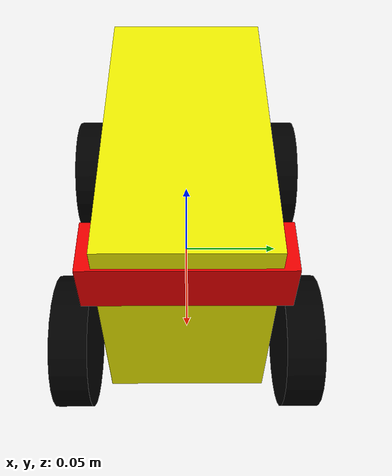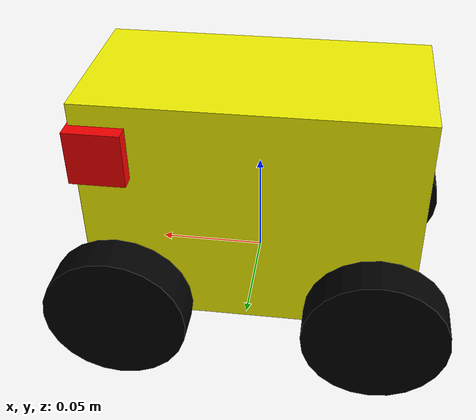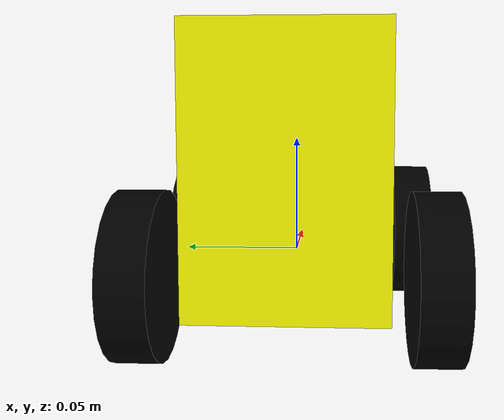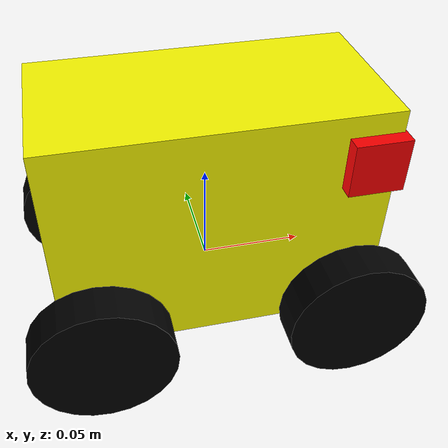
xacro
<?xml version="1.0"?>
<robot xmlns:xacro="http://www.ros.org/wiki/xacro" name="nanobot">

  <xacro:arg name="sim_mode" default="false" />

  <xacro:include filename="robot_core.xacro" />

  <xacro:include filename="camera.xacro" />

  <xacro:include filename="imu.xacro" />

  <xacro:if value="$(arg sim_mode)">
    <xacro:include filename="$(find nanobot_diffdrive)/description/gazebo_ros2_control.xacro" />
  </xacro:if>
  <xacro:unless value="$(arg sim_mode)">
    <xacro:include filename="$(find nanobot_diffdrive)/description/ros2_control.xacro" />
  </xacro:unless>

</robot>

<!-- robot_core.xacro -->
<robot xmlns:xacro="http://www.ros.org/wiki/xacro" name="nanobot">

  <xacro:include filename="inertial_macros.xacro" />

  <!-- Body dimensions -->
  <xacro:property name="body_x_dim" value="0.152" />
  <xacro:property name="body_y_dim" value="0.0765" />
  <xacro:property name="body_z_dim" value="0.110" />
  <xacro:property name="body_z_offset" value="0.01425" />

  <!-- Wheel dimensions -->
  <xacro:property name="wheel_radius" value="0.033" /> <!-- 66mm diameter -->
  <xacro:property name="wheel_length" value="0.018" />
  <xacro:property name="wheel_x_offset" value="0.05875" />
  <xacro:property name="wheel_y_offset" value="0.00825" />

  <!-- Robot body and wheel mass -->
  <xacro:property name="body_mass" value="1.146" />
  <xacro:property name="wheel_mass" value="0.028" />

  <!-- Moments of intertia of the wheel -->
  <xacro:macro name="inertia_wheel">
    <xacro:inertial_cylinder mass="${wheel_mass}" length="${wheel_length}"
      radius="${wheel_radius}">
      <origin xyz="0 0 0" rpy="0 0 0" />
    </xacro:inertial_cylinder>
  </xacro:macro>

  <!-- Materials -->

  <material name="yellow">
    <color rgba="1 1 0 1" />
  </material>

  <material name="black">
    <color rgba="0 0 0 1" />
  </material>

  <material name="red">
    <color rgba="1 0 0 1" />
  </material>

  <!-- Links and joints definition -->

  <!-- TODO: Enable base footprint  -->
  <!-- Base footprint -->

  <!-- Base link -->

  <link name="base_link"></link>

  <!-- Body -->

  <joint name="body_joint" type="fixed">
    <parent link="base_link" />
    <child link="body_link" />
    <origin xyz="0 0 -${body_z_offset}"/>
  </joint>

  <link name="body_link">
    <visual>
      <origin xyz="0 0 ${body_z_dim/2}" rpy="0 0 0" />
      <geometry>
        <box size="${body_x_dim} ${body_y_dim} ${body_z_dim}" />
      </geometry>
      <material name="yellow" />
    </visual>
    <collision>
      <origin xyz="0 0 ${body_z_dim/2}" rpy="0 0 0" />
      <geometry>
        <box size="${body_x_dim} ${body_y_dim} ${body_z_dim}" />
      </geometry>
    </collision>
    <xacro:inertial_box mass="${body_mass}" x="${body_x_dim}" y="${body_y_dim}"
      z="${body_z_dim}">
      <origin xyz="0 0 ${body_z_dim/2}" rpy="0 0 0" />
    </xacro:inertial_box>
  </link>

  <gazebo reference="body_link">
    <material>Gazebo/Yellow</material>
  </gazebo>

  <!-- Front left wheel -->

  <joint name="front_left_wheel_joint" type="continuous">
    <parent link="base_link" />
    <child link="front_left_wheel_link" />
    <origin
      xyz="${wheel_x_offset} ${body_y_dim/2 + wheel_length/2 + wheel_y_offset} 0"
      rpy="-${pi/2} 0 0" />
    <axis xyz="0 0 1" />
    <limit effort="100" velocity="100" />
  </joint>

  <link name="front_left_wheel_link">
    <visual>
      <geometry>
        <cylinder length="${wheel_length}" radius="${wheel_radius}" />
      </geometry>
      <material name="black" />
    </visual>
    <collision>
      <geometry>
        <sphere radius="${wheel_radius}" />
      </geometry>
    </collision>
    <xacro:inertia_wheel />
  </link>

  <gazebo reference="front_left_wheel_link">
    <material>Gazebo/Black</material>
  </gazebo>

  <!-- Front right wheel -->

  <joint name="front_right_wheel_joint" type="continuous">
    <parent link="base_link" />
    <child link="front_right_wheel_link" />
    <origin
      xyz="${wheel_x_offset} -${body_y_dim/2 + wheel_length/2 + wheel_y_offset} 0"
      rpy="${pi/2} 0 0" />
    <axis xyz="0 0 -1" />
    <limit effort="100" velocity="100" />
  </joint>

  <link name="front_right_wheel_link">
    <visual>
      <geometry>
        <cylinder length="${wheel_length}" radius="${wheel_radius}" />
      </geometry>
      <material name="black" />
    </visual>
    <collision>
      <geometry>
        <sphere radius="${wheel_radius}" />
      </geometry>
    </collision>
    <xacro:inertia_wheel />
  </link>

  <gazebo reference="front_right_wheel_link">
    <material>Gazebo/Black</material>
  </gazebo>

  <!-- Rear left wheel -->

  <joint name="rear_left_wheel_joint" type="continuous">
    <parent link="base_link" />
    <child link="rear_left_wheel_link" />
    <origin
      xyz="-${wheel_x_offset} ${body_y_dim/2 + wheel_length/2 + wheel_y_offset} 0"
      rpy="-${pi/2} 0 0" />
    <axis xyz="0 0 1" />
    <limit effort="100" velocity="100" />
  </joint>

  <link name="rear_left_wheel_link">
    <visual>
      <geometry>
        <cylinder length="${wheel_length}" radius="${wheel_radius}" />
      </geometry>
      <material name="black" />
    </visual>
    <collision>
      <geometry>
        <sphere radius="${wheel_radius}" />
      </geometry>
    </collision>
    <xacro:inertia_wheel />
  </link>

  <gazebo reference="rear_left_wheel_link">
    <material>Gazebo/Black</material>
  </gazebo>

  <!-- Rear right wheel -->

  <joint name="rear_right_wheel_joint" type="continuous">
    <parent link="base_link" />
    <child link="rear_right_wheel_link" />
    <origin
      xyz="-${wheel_x_offset} -${body_y_dim/2 + wheel_length/2 + wheel_y_offset} 0"
      rpy="${pi/2} 0 0" />
    <axis xyz="0 0 -1" />
    <limit effort="100" velocity="100" />
  </joint>

  <link name="rear_right_wheel_link">
    <visual>
      <geometry>
        <cylinder length="${wheel_length}" radius="${wheel_radius}" />
      </geometry>
      <material name="black" />
    </visual>
    <collision>
      <geometry>
        <sphere radius="${wheel_radius}" />
      </geometry>
    </collision>
    <xacro:inertia_wheel />
  </link>

  <gazebo reference="rear_right_wheel_link">
    <material>Gazebo/Black</material>
  </gazebo>

</robot>

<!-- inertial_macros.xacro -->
<robot xmlns:xacro="http://www.ros.org/wiki/xacro">

  <!-- Specify some standard inertial calculations
  https://en.wikipedia.org/wiki/List_of_moments_of_inertia -->
  <!-- These make use of xacro's mathematical functionality -->

  <xacro:macro name="inertial_sphere" params="mass radius *origin">
    <inertial>
      <xacro:insert_block name="origin" />
      <mass value="${mass}" />
      <inertia ixx="${(2/5) * mass * (radius*radius)}" ixy="0.0" ixz="0.0"
        iyy="${(2/5) * mass * (radius*radius)}" iyz="0.0"
        izz="${(2/5) * mass * (radius*radius)}" />
    </inertial>
  </xacro:macro>

  <xacro:macro name="inertial_box" params="mass x y z *origin">
    <inertial>
      <xacro:insert_block name="origin" />
      <mass value="${mass}" />
      <inertia ixx="${(1/12) * mass * (y*y+z*z)}" ixy="0.0" ixz="0.0"
        iyy="${(1/12) * mass * (x*x+z*z)}" iyz="0.0"
        izz="${(1/12) * mass * (x*x+y*y)}" />
    </inertial>
  </xacro:macro>

  <xacro:macro name="inertial_cylinder" params="mass length radius *origin">
    <inertial>
      <xacro:insert_block name="origin" />
      <mass value="${mass}" />
      <inertia ixx="${(1/12) * mass * (3*radius*radius + length*length)}" ixy="0.0" ixz="0.0"
        iyy="${(1/12) * mass * (3*radius*radius + length*length)}" iyz="0.0"
        izz="${(1/2) * mass * (radius*radius)}" />
    </inertial>
  </xacro:macro>

</robot>

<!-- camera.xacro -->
<robot xmlns:xacro="http://www.ros.org/wiki/xacro" name="nanobot">

  <!-- Camera specs -->
  <xacro:property name="camera_x_dim" value="0.025" />
  <xacro:property name="camera_y_dim" value="0.09" />
  <xacro:property name="camera_z_dim" value="0.025" />
  <xacro:property name="camera_x_offset" value="0.001" />
  <xacro:property name="camera_height" value="0.0875" />
  <xacro:property name="sensor_offset" value="0.0175" />

  <!-- Links and joints definition -->

  <joint name="camera_joint" type="fixed">
    <parent link="body_link" />
    <child link="camera_link" />
    <origin xyz="${body_x_dim/2 + camera_x_offset} ${sensor_offset} ${camera_height}" rpy="0 0 0" />
  </joint>

  <link name="camera_link">
    <visual>
      <origin xyz="-${camera_x_dim/2} -${sensor_offset} 0" rpy="0 0 0" />
      <geometry>
        <box size="${camera_x_dim} ${camera_y_dim} ${camera_z_dim}" />
      </geometry>
      <material name="red" />
    </visual>
  </link>

  <joint name="camera_optical_joint" type="fixed">
    <parent link="camera_link" />
    <child link="camera_optical_link" />
    <origin xyz="0 0 0" rpy="-${pi/2} 0 -${pi/2}" />
  </joint>

  <link name="camera_optical_link" />

  <!-- Gazebo -->

  <gazebo reference="camera_link">
    <material>Gazebo/Red</material>

    <sensor name="camera" type="camera">
      <pose> 0 0 0 0 0 0 </pose>
      <visualize>true</visualize>
      <update_rate>10</update_rate>
      <camera>
        <camera_info_topic>camera/color/camera_info</camera_info_topic>
        <horizontal_fov>1.089</horizontal_fov>
        <image>
          <format>R8G8B8</format>
          <width>640</width>
          <height>480</height>
        </image>
        <clip>
          <near>0.05</near>
          <far>8.0</far>
        </clip>
      </camera>
      <topic>camera/color/image_raw</topic>
      <gz_frame_id>camera_optical_link</gz_frame_id>
    </sensor>

    <sensor name="depth_camera" type="depth_camera">
      <pose> 0 0 0 0 0 0 </pose>
      <visualize>true</visualize>
      <always_on>1</always_on>
      <update_rate>10</update_rate>
      <camera>
        <camera_info_topic>camera/depth/camera_info</camera_info_topic>
        <horizontal_fov>1.089</horizontal_fov>
        <image>
          <format>R_FLOAT32</format>
          <width>640</width>
          <height>480</height>
        </image>
        <clip>
          <near>0.05</near>
          <far>8.0</far>
        </clip>
      </camera>
      <topic>camera/depth/image_rect_raw</topic>
      <ignition_frame_id>camera_link</ignition_frame_id>
    </sensor>
  </gazebo>

</robot>

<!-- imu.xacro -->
<robot xmlns:xacro="http://www.ros.org/wiki/xacro" name="nanobot">

  <!-- IMU specs -->
  <xacro:property name="imu_z_dim" value="0.002" />
  <xacro:property name="imu_body_z_offset" value="0.004" />

  <!-- Links and joints definition -->

  <joint name="imu_joint" type="fixed">
    <parent link="base_link" />
    <child link="imu_link" />
    <origin xyz="0 0 ${body_z_dim - body_z_offset - imu_body_z_offset - imu_z_dim}" rpy="0 0 ${pi/2}" />
  </joint>

  <link name="imu_link" />

</robot>
